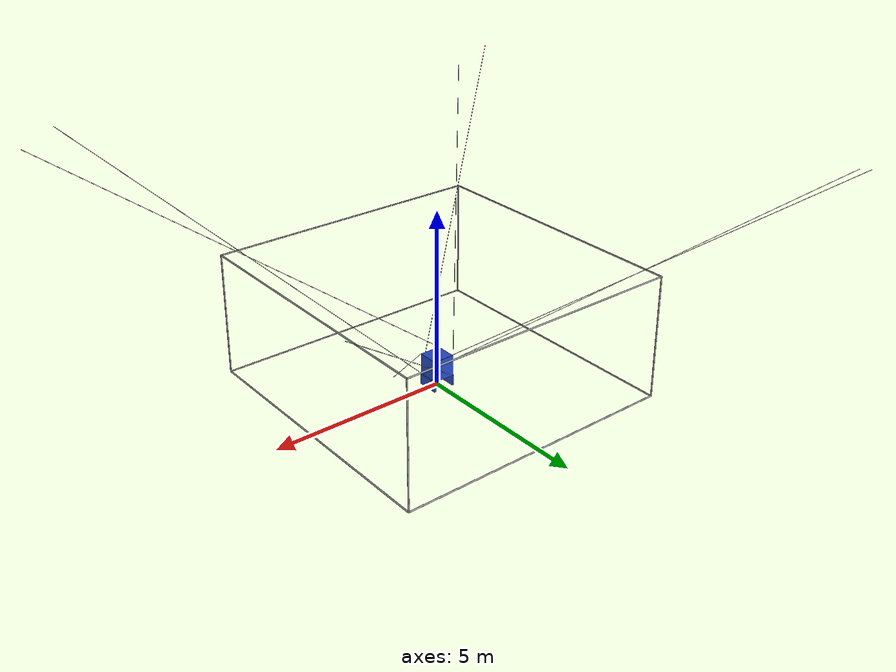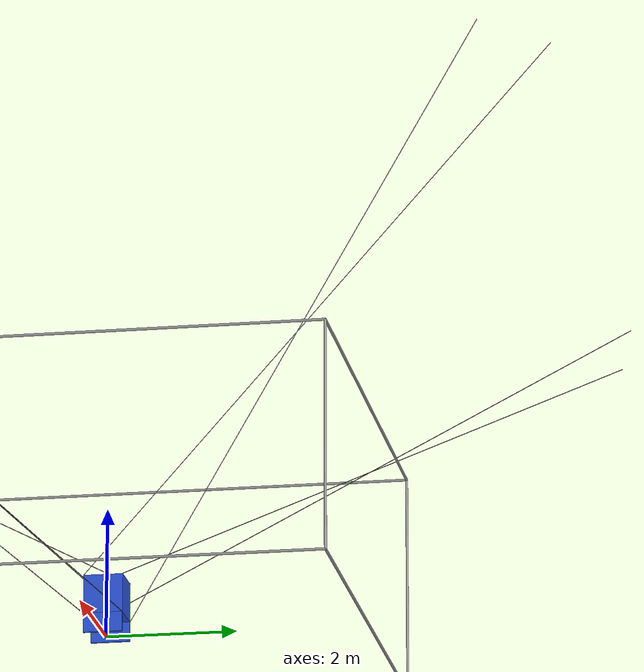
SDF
<?xml version="1.0"?>
<sdf version="1.4">
  <model name="caroca">
    <!--Definition of the robot frame-->
    <link name="frame">
      <pose>0 0 0 0 0 0</pose>
      <inertial>
        <inertia>
          <ixx>100000</ixx>
          <iyy>100000</iyy>
          <izz>100000</izz>
          <ixy>0</ixy>
          <ixz>0</ixz>
          <iyz>0</iyz>
        </inertia>
        <mass>100000</mass>
      </inertial>
      <visual name="visual1">
        <geometry>
          <cylinder>
            <radius>0.02</radius>
            <length>3.48</length>
          </cylinder>
        </geometry>
        <pose>-4.000000 -4.000000 1.760000 0.000000 0.000000 0.000000</pose>
        <material>
          <script>
            <uri>file://media/materials/scripts/kitchen.material</uri>
            <name>Gazebo/Grey</name>
          </script>
        </material>
      </visual>
      <collision name="collision1">
        <geometry>
          <cylinder>
            <radius>0.02</radius>
          </cylinder>
        </geometry>
        <pose>-4.000000 -4.000000 1.760000 0.000000 0.000000 0.000000</pose>
      </collision>
      <visual name="visual2">
        <geometry>
          <cylinder>
            <radius>0.02</radius>
            <length>8.0</length>
          </cylinder>
        </geometry>
        <pose>-4.000000 0.000000 0.020000 1.570796 0.000000 0.000000</pose>
        <material>
          <script>
            <uri>file://media/materials/scripts/kitchen.material</uri>
            <name>Gazebo/Grey</name>
          </script>
        </material>
      </visual>
      <collision name="collision2">
        <geometry>
          <cylinder>
            <radius>0.02</radius>
          </cylinder>
        </geometry>
        <pose>-4.000000 0.000000 0.020000 1.570796 0.000000 0.000000</pose>
      </collision>
      <visual name="visual3">
        <geometry>
          <cylinder>
            <radius>0.02</radius>
            <length>8.0</length>
          </cylinder>
        </geometry>
        <pose>0.000000 -4.000000 0.020000 0.000000 1.570796 0.000000</pose>
        <material>
          <script>
            <uri>file://media/materials/scripts/kitchen.material</uri>
            <name>Gazebo/Grey</name>
          </script>
        </material>
      </visual>
      <collision name="collision3">
        <geometry>
          <cylinder>
            <radius>0.02</radius>
          </cylinder>
        </geometry>
        <pose>0.000000 -4.000000 0.020000 0.000000 1.570796 0.000000</pose>
      </collision>
      <visual name="visual4">
        <geometry>
          <cylinder>
            <radius>0.02</radius>
            <length>8.0</length>
          </cylinder>
        </geometry>
        <pose>-4.000000 0.000000 3.500000 1.570796 0.000000 0.000000</pose>
        <material>
          <script>
            <uri>file://media/materials/scripts/kitchen.material</uri>
            <name>Gazebo/Grey</name>
          </script>
        </material>
      </visual>
      <collision name="collision4">
        <geometry>
          <cylinder>
            <radius>0.02</radius>
          </cylinder>
        </geometry>
        <pose>-4.000000 0.000000 3.500000 1.570796 0.000000 0.000000</pose>
      </collision>
      <visual name="visual5">
        <geometry>
          <cylinder>
            <radius>0.02</radius>
            <length>8.0</length>
          </cylinder>
        </geometry>
        <pose>0.000000 -4.000000 3.500000 0.000000 1.570796 0.000000</pose>
        <material>
          <script>
            <uri>file://media/materials/scripts/kitchen.material</uri>
            <name>Gazebo/Grey</name>
          </script>
        </material>
      </visual>
      <collision name="collision5">
        <geometry>
          <cylinder>
            <radius>0.02</radius>
          </cylinder>
        </geometry>
        <pose>0.000000 -4.000000 3.500000 0.000000 1.570796 0.000000</pose>
      </collision>
      <visual name="visual6">
        <geometry>
          <cylinder>
            <radius>0.02</radius>
            <length>3.48</length>
          </cylinder>
        </geometry>
        <pose>-4.000000 4.000000 1.760000 0.000000 0.000000 0.000000</pose>
        <material>
          <script>
            <uri>file://media/materials/scripts/kitchen.material</uri>
            <name>Gazebo/Grey</name>
          </script>
        </material>
      </visual>
      <collision name="collision6">
        <geometry>
          <cylinder>
            <radius>0.02</radius>
          </cylinder>
        </geometry>
        <pose>-4.000000 4.000000 1.760000 0.000000 0.000000 0.000000</pose>
      </collision>
      <visual name="visual7">
        <geometry>
          <cylinder>
            <radius>0.02</radius>
            <length>8.0</length>
          </cylinder>
        </geometry>
        <pose>0.000000 4.000000 0.020000 0.000000 1.570796 0.000000</pose>
        <material>
          <script>
            <uri>file://media/materials/scripts/kitchen.material</uri>
            <name>Gazebo/Grey</name>
          </script>
        </material>
      </visual>
      <collision name="collision7">
        <geometry>
          <cylinder>
            <radius>0.02</radius>
          </cylinder>
        </geometry>
        <pose>0.000000 4.000000 0.020000 0.000000 1.570796 0.000000</pose>
      </collision>
      <visual name="visual8">
        <geometry>
          <cylinder>
            <radius>0.02</radius>
            <length>8.0</length>
          </cylinder>
        </geometry>
        <pose>0.000000 4.000000 3.500000 0.000000 1.570796 0.000000</pose>
        <material>
          <script>
            <uri>file://media/materials/scripts/kitchen.material</uri>
            <name>Gazebo/Grey</name>
          </script>
        </material>
      </visual>
      <collision name="collision8">
        <geometry>
          <cylinder>
            <radius>0.02</radius>
          </cylinder>
        </geometry>
        <pose>0.000000 4.000000 3.500000 0.000000 1.570796 0.000000</pose>
      </collision>
      <visual name="visual9">
        <geometry>
          <cylinder>
            <radius>0.02</radius>
            <length>3.48</length>
          </cylinder>
        </geometry>
        <pose>4.000000 -4.000000 1.760000 0.000000 0.000000 0.000000</pose>
        <material>
          <script>
            <uri>file://media/materials/scripts/kitchen.material</uri>
            <name>Gazebo/Grey</name>
          </script>
        </material>
      </visual>
      <collision name="collision9">
        <geometry>
          <cylinder>
            <radius>0.02</radius>
          </cylinder>
        </geometry>
        <pose>4.000000 -4.000000 1.760000 0.000000 0.000000 0.000000</pose>
      </collision>
      <visual name="visual10">
        <geometry>
          <cylinder>
            <radius>0.02</radius>
            <length>8.0</length>
          </cylinder>
        </geometry>
        <pose>4.000000 0.000000 0.020000 1.570796 0.000000 0.000000</pose>
        <material>
          <script>
            <uri>file://media/materials/scripts/kitchen.material</uri>
            <name>Gazebo/Grey</name>
          </script>
        </material>
      </visual>
      <collision name="collision10">
        <geometry>
          <cylinder>
            <radius>0.02</radius>
          </cylinder>
        </geometry>
        <pose>4.000000 0.000000 0.020000 1.570796 0.000000 0.000000</pose>
      </collision>
      <visual name="visual11">
        <geometry>
          <cylinder>
            <radius>0.02</radius>
            <length>8.0</length>
          </cylinder>
        </geometry>
        <pose>4.000000 0.000000 3.500000 1.570796 0.000000 0.000000</pose>
        <material>
          <script>
            <uri>file://media/materials/scripts/kitchen.material</uri>
            <name>Gazebo/Grey</name>
          </script>
        </material>
      </visual>
      <collision name="collision11">
        <geometry>
          <cylinder>
            <radius>0.02</radius>
          </cylinder>
        </geometry>
        <pose>4.000000 0.000000 3.500000 1.570796 0.000000 0.000000</pose>
      </collision>
      <visual name="visual12">
        <geometry>
          <cylinder>
            <radius>0.02</radius>
            <length>3.48</length>
          </cylinder>
        </geometry>
        <pose>4.000000 4.000000 1.760000 0.000000 0.000000 0.000000</pose>
        <material>
          <script>
            <uri>file://media/materials/scripts/kitchen.material</uri>
            <name>Gazebo/Grey</name>
          </script>
        </material>
      </visual>
      <collision name="collision12">
        <geometry>
          <cylinder>
            <radius>0.02</radius>
          </cylinder>
        </geometry>
        <pose>4.000000 4.000000 1.760000 0.000000 0.000000 0.000000</pose>
      </collision>
    </link>
    <!--Definition of the robot cables-->
    <!--Definition of the robot platform-->
    <link name="platform">
      <pose>0.000000 0.000000 0.600000 0.000000 0.000000 0.000000</pose>
      <visual name="visualpf">
        <geometry>
          <box>
            <size>0.600000 0.600000 0.600000</size>
          </box>
        </geometry>
        <material>
          <script>
            <uri>file://media/materials/scripts/kitchen.material</uri>
            <name>Gazebo/Blue</name>
          </script>
        </material>
      </visual>
      <collision name="collisionpf">
        <geometry>
          <box>
            <size>0.600000 0.600000 0.600000</size>
          </box>
        </geometry>
      </collision>
      <inertial>
        <inertia>
          <ixx>6.5</ixx>
          <iyy>20.0</iyy>
          <izz>22.5</izz>
          <ixy>0.0</ixy>
          <ixz>0.0</ixz>
          <iyz>0.0</iyz>
        </inertia>
        <mass>150</mass>
      </inertial>
    </link>

    <link name="right_grip">
      <pose>0.3 0 0.15 0 0 0</pose>
      <visual name="visual_right_grip">
        <geometry>
          <box>
            <size>0.05 0.6 0.3</size>
          </box>
        </geometry>
        <material>
          <script>
            <uri>file://media/materials/scripts/kitchen.material</uri>
            <name>Gazebo/Blue</name>
          </script>
        </material>
      </visual>
      <collision name="collision_right_grip">
        <geometry>
          <box>
            <size>0.05 0.6 0.3</size>
          </box>
        </geometry>
        <surface>
          <friction>
            <ode>
              <mu>1</mu>
              <mu2>1</mu2>
              <fdir1>0 0 0</fdir1>
              <slip1>0</slip1>
              <slip2>0</slip2>
            </ode>
            <torsional>
              <coefficient>1</coefficient>
              <patch_radius>0</patch_radius>
              <surface_radius>0</surface_radius>
              <use_patch_radius>1</use_patch_radius>
              <ode>
                <slip>0</slip>
              </ode>
            </torsional>
          </friction>
        </surface>
      </collision>
      <inertial>
        <inertia>
          <ixx>0.166667</ixx>
          <iyy>0</iyy>
          <izz>0</izz>
          <ixy>0.166667</ixy>
          <ixz>0</ixz>
          <iyz>0.166667</iyz>
        </inertia>
        <mass>1</mass>
      </inertial>
    </link>

    <link name="left_grip">
      <pose>-0.3 0 0.15 0 0 0</pose>
      <visual name="visual_left_grip">
        <geometry>
          <box>
            <size>0.05 0.6 0.3</size>
          </box>
        </geometry>
        <material>
          <script>
            <uri>file://media/materials/scripts/kitchen.material</uri>
            <name>Gazebo/Blue</name>
          </script>
        </material>
      </visual>
      <collision name="collision_left_grip">
        <geometry>
          <box>
            <size>0.05 0.6 0.3</size>
          </box>
        </geometry>
        <surface>
          <friction>
            <ode>
              <mu>1</mu>
              <mu2>1</mu2>
              <fdir1>0 0 0</fdir1>
              <slip1>0</slip1>
              <slip2>0</slip2>
            </ode>
            <torsional>
              <coefficient>1</coefficient>
              <patch_radius>0</patch_radius>
              <surface_radius>0</surface_radius>
              <use_patch_radius>1</use_patch_radius>
              <ode>
                <slip>0</slip>
              </ode>
            </torsional>
          </friction>
          </surface>
      </collision>
      <inertial>
        <inertia>
          <ixx>0.166667</ixx>
          <iyy>0</iyy>
          <izz>0</izz>
          <ixy>0.166667</ixy>
          <ixz>0</ixz>
          <iyz>0.166667</iyz>
        </inertia>
        <mass>1</mass>
      </inertial>
    </link>

     <joint name="grip_left_slide" type="prismatic">
      <pose>0 0 0 0 0 0</pose>
      <parent>platform</parent>
      <child>left_grip</child>
      <axis>
        <xyz>1 0 0</xyz>
        <limit>
          <lower>0</lower>
          <upper>0.2</upper>
          <effort>1000</effort>
          <velocity>10</velocity>
        </limit>
        <dynamics>
          <spring_reference>0</spring_reference>
          <spring_stiffness>0</spring_stiffness>
          <damping>0</damping>
        </dynamics>
      </axis>
    </joint>

    <joint name="grip_right_slide" type="prismatic">
      <pose>0 0 0 0 0 0</pose>
      <parent>platform</parent>
      <child>right_grip</child>
      <axis>
        <xyz>-1 0 0</xyz>
        <limit>
           <lower>0</lower>
          <upper>0.2</upper>
          <effort>1000</effort>
          <velocity>10</velocity>
        </limit>
        <dynamics>
          <spring_reference>0</spring_reference>
          <spring_stiffness>0</spring_stiffness>
          <damping>0</damping>
        </dynamics>
      </axis>
    </joint>

    <link name="cable0">
      <pose>-3.505850 -3.504926 3.504926 -2.356194 0.698478 -1.442379</pose>
      <visual name="visual">
        <geometry>
          <cylinder>
            <radius>0.005</radius>
            <length>11.8368238983</length>
          </cylinder>
        </geometry>
        <material>
          <script>
            <uri>file://media/materials/scripts/kitchen.material</uri>
            <name>Gazebo/Black</name>
          </script>
        </material>
      </visual>
      <inertial>
        <inertia>
          <ixx>0.001</ixx>
          <iyy>0.001</iyy>
          <izz>0.001</izz>
          <ixy>0</ixy>
          <ixz>0</ixz>
          <iyz>0</iyz>
        </inertia>
        <mass>0.001</mass>
      </inertial>
    </link>
    <link name="virt_X0">
      <inertial>
        <inertia>
          <ixx>0.001</ixx>
          <iyy>0.001</iyy>
          <izz>0.001</izz>
          <ixy>0</ixy>
          <ixz>0</ixz>
          <iyz>0</iyz>
        </inertia>
        <mass>0.001</mass>
      </inertial>
      <pose>-3.500000 -3.500000 3.500000 -2.356194 0.698478 -1.442379</pose>
    </link>
    <joint name="rev_X0" type="revolute">
      <pose>0 0 0 -2.356194 0.698478 -1.442379</pose>
      <parent>frame</parent>
      <child>virt_X0</child>
      <axis>
        <xyz>0.098075 -0.759516 -0.643053</xyz>
        <limit>
          <effort>1000</effort>
          <velocity>10</velocity>
        </limit>
        <dynamics>
          <damping>0.01</damping>
        </dynamics>
      </axis>
    </joint>
    <link name="virt_Y0">
      <inertial>
        <inertia>
          <ixx>0.001</ixx>
          <iyy>0.001</iyy>
          <izz>0.001</izz>
          <ixy>0</ixy>
          <ixz>0</ixz>
          <iyz>0</iyz>
        </inertia>
        <mass>0.001</mass>
      </inertial>
      <pose>-3.500000 -3.500000 3.500000 -2.356194 0.698478 -1.442379</pose>
    </link>
    <joint name="rev_Y0" type="revolute">
      <pose>0 0 0 -2.356194 0.698478 -1.442379</pose>
      <parent>virt_X0</parent>
      <child>virt_Y0</child>
      <axis>
        <xyz>-0.759516 0.360407 -0.541518</xyz>
        <limit>
          <effort>1000</effort>
          <velocity>10</velocity>
        </limit>
        <dynamics>
          <damping>0.01</damping>
        </dynamics>
      </axis>
    </joint>
    <joint name="cable0" type="prismatic">
      <pose>0 0 0.009111 -2.356194 0.698478 -1.442379</pose>
      <parent>virt_Y0</parent>
      <child>cable0</child>
      <axis>
        <xyz>-0.643053 -0.541518 0.541518</xyz>
        <limit>
          <lower>-5.91841194916</lower>
          <upper>5.91841194916</upper>
          <effort>10000</effort>
          <velocity>10</velocity>
        </limit>
        <dynamics>
          <damping>1</damping>
        </dynamics>
      </axis>
    </joint>
    <link name="virt_Xpf0">
      <inertial>
        <inertia>
          <ixx>0.001</ixx>
          <iyy>0.001</iyy>
          <izz>0.001</izz>
          <ixy>0</ixy>
          <ixz>0</ixz>
          <iyz>0</iyz>
        </inertia>
        <mass>0.001</mass>
      </inertial>
      <pose>0.300000 -0.300000 0.300000 -2.356194 0.698478 -1.442379</pose>
    </link>
    <joint name="rev_Xpf0" type="revolute">
      <pose>0 0 0 -2.356194 0.698478 -1.442379</pose>
      <parent>platform</parent>
      <child>virt_Xpf0</child>
      <axis>
        <xyz>1 0 0</xyz>
        <limit>
          <effort>1000</effort>
          <velocity>10</velocity>
        </limit>
        <dynamics>
          <damping>0.01</damping>
        </dynamics>
      </axis>
    </joint>
    <link name="virt_Ypf0">
      <inertial>
        <inertia>
          <ixx>0.001</ixx>
          <iyy>0.001</iyy>
          <izz>0.001</izz>
          <ixy>0</ixy>
          <ixz>0</ixz>
          <iyz>0</iyz>
        </inertia>
        <mass>0.001</mass>
      </inertial>
      <pose>0.300000 -0.300000 0.300000 -2.356194 0.698478 -1.442379</pose>
    </link>
    <joint name="rev_Ypf0" type="revolute">
      <pose>0 0 0 -2.356194 0.698478 -1.442379</pose>
      <parent>virt_Xpf0</parent>
      <child>virt_Ypf0</child>
      <axis>
        <xyz>0 1 0</xyz>
        <limit>
          <effort>1000</effort>
          <velocity>10</velocity>
        </limit>
        <dynamics>
          <damping>0.01</damping>
        </dynamics>
      </axis>
    </joint>
    <joint name="rev_Zpf0" type="revolute">
      <pose>0 0 0 -2.356194 0.698478 -1.442379</pose>
      <child>virt_Ypf0</child>
      <parent>cable0</parent>
      <axis>
        <xyz>0 0 1</xyz>
        <limit>
          <effort>1000</effort>
          <velocity>10</velocity>
        </limit>
        <dynamics>
          <damping>0.01</damping>
        </dynamics>
      </axis>
    </joint>
    <link name="cable1">
      <pose>-3.677644 -3.710952 3.644336 -2.170847 0.607359 -1.072165</pose>
      <visual name="visual">
        <geometry>
          <cylinder>
            <radius>0.005</radius>
            <length>11.8368238983</length>
          </cylinder>
        </geometry>
        <material>
          <script>
            <uri>file://media/materials/scripts/kitchen.material</uri>
            <name>Gazebo/Black</name>
          </script>
        </material>
      </visual>
      <inertial>
        <inertia>
          <ixx>0.001</ixx>
          <iyy>0.001</iyy>
          <izz>0.001</izz>
          <ixy>0</ixy>
          <ixz>0</ixz>
          <iyz>0</iyz>
        </inertia>
        <mass>0.001</mass>
      </inertial>
    </link>
    <link name="virt_X1">
      <inertial>
        <inertia>
          <ixx>0.001</ixx>
          <iyy>0.001</iyy>
          <izz>0.001</izz>
          <ixy>0</ixy>
          <ixz>0</ixz>
          <iyz>0</iyz>
        </inertia>
        <mass>0.001</mass>
      </inertial>
      <pose>-3.500000 -3.500000 3.500000 -2.170847 0.607359 -1.072165</pose>
    </link>
    <joint name="rev_X1" type="revolute">
      <pose>0 0 0 -2.170847 0.607359 -1.072165</pose>
      <parent>frame</parent>
      <child>virt_X1</child>
      <axis>
        <xyz>0.392697 -0.721172 -0.570701</xyz>
        <limit>
          <effort>1000</effort>
          <velocity>10</velocity>
        </limit>
        <dynamics>
          <damping>0.01</damping>
        </dynamics>
      </axis>
    </joint>
    <link name="virt_Y1">
      <inertial>
        <inertia>
          <ixx>0.001</ixx>
          <iyy>0.001</iyy>
          <izz>0.001</izz>
          <ixy>0</ixy>
          <ixz>0</ixz>
          <iyz>0</iyz>
        </inertia>
        <mass>0.001</mass>
      </inertial>
      <pose>-3.500000 -3.500000 3.500000 -2.170847 0.607359 -1.072165</pose>
    </link>
    <joint name="rev_Y1" type="revolute">
      <pose>0 0 0 -2.170847 0.607359 -1.072165</pose>
      <parent>virt_X1</parent>
      <child>virt_Y1</child>
      <axis>
        <xyz>-0.721172 0.143608 -0.677708</xyz>
        <limit>
          <effort>1000</effort>
          <velocity>10</velocity>
        </limit>
        <dynamics>
          <damping>0.01</damping>
        </dynamics>
      </axis>
    </joint>
    <joint name="cable1" type="prismatic">
      <pose>0 0 0.328554 -2.170847 0.607359 -1.072165</pose>
      <parent>virt_Y1</parent>
      <child>cable1</child>
      <axis>
        <xyz>-0.570701 -0.677708 0.463695</xyz>
        <limit>
          <lower>-5.91841194916</lower>
          <upper>5.91841194916</upper>
          <effort>10000</effort>
          <velocity>10</velocity>
        </limit>
        <dynamics>
          <damping>1</damping>
        </dynamics>
      </axis>
    </joint>
    <link name="virt_Xpf1">
      <inertial>
        <inertia>
          <ixx>0.001</ixx>
          <iyy>0.001</iyy>
          <izz>0.001</izz>
          <ixy>0</ixy>
          <ixz>0</ixz>
          <iyz>0</iyz>
        </inertia>
        <mass>0.001</mass>
      </inertial>
      <pose>-0.300000 0.300000 0.900000 -2.170847 0.607359 -1.072165</pose>
    </link>
    <joint name="rev_Xpf1" type="revolute">
      <pose>0 0 0 -2.170847 0.607359 -1.072165</pose>
      <parent>platform</parent>
      <child>virt_Xpf1</child>
      <axis>
        <xyz>1 0 0</xyz>
        <limit>
          <effort>1000</effort>
          <velocity>10</velocity>
        </limit>
        <dynamics>
          <damping>0.01</damping>
        </dynamics>
      </axis>
    </joint>
    <link name="virt_Ypf1">
      <inertial>
        <inertia>
          <ixx>0.001</ixx>
          <iyy>0.001</iyy>
          <izz>0.001</izz>
          <ixy>0</ixy>
          <ixz>0</ixz>
          <iyz>0</iyz>
        </inertia>
        <mass>0.001</mass>
      </inertial>
      <pose>-0.300000 0.300000 0.900000 -2.170847 0.607359 -1.072165</pose>
    </link>
    <joint name="rev_Ypf1" type="revolute">
      <pose>0 0 0 -2.170847 0.607359 -1.072165</pose>
      <parent>virt_Xpf1</parent>
      <child>virt_Ypf1</child>
      <axis>
        <xyz>0 1 0</xyz>
        <limit>
          <effort>1000</effort>
          <velocity>10</velocity>
        </limit>
        <dynamics>
          <damping>0.01</damping>
        </dynamics>
      </axis>
    </joint>
    <joint name="rev_Zpf1" type="revolute">
      <pose>0 0 0 -2.170847 0.607359 -1.072165</pose>
      <child>virt_Ypf1</child>
      <parent>cable1</parent>
      <axis>
        <xyz>0 0 1</xyz>
        <limit>
          <effort>1000</effort>
          <velocity>10</velocity>
        </limit>
        <dynamics>
          <damping>0.01</damping>
        </dynamics>
      </axis>
    </joint>
    <link name="cable2">
      <pose>3.710952 -3.677644 3.644336 -2.253113 -0.744641 1.374236</pose>
      <visual name="visual">
        <geometry>
          <cylinder>
            <radius>0.005</radius>
            <length>11.8368238983</length>
          </cylinder>
        </geometry>
        <material>
          <script>
            <uri>file://media/materials/scripts/kitchen.material</uri>
            <name>Gazebo/Black</name>
          </script>
        </material>
      </visual>
      <inertial>
        <inertia>
          <ixx>0.001</ixx>
          <iyy>0.001</iyy>
          <izz>0.001</izz>
          <ixy>0</ixy>
          <ixz>0</ixz>
          <iyz>0</iyz>
        </inertia>
        <mass>0.001</mass>
      </inertial>
    </link>
    <link name="virt_X2">
      <inertial>
        <inertia>
          <ixx>0.001</ixx>
          <iyy>0.001</iyy>
          <izz>0.001</izz>
          <ixy>0</ixy>
          <ixz>0</ixz>
          <iyz>0</iyz>
        </inertia>
        <mass>0.001</mass>
      </inertial>
      <pose>3.500000 -3.500000 3.500000 -2.253113 -0.744641 1.374236</pose>
    </link>
    <joint name="rev_X2" type="revolute">
      <pose>0 0 0 -2.253113 -0.744641 1.374236</pose>
      <parent>frame</parent>
      <child>virt_X2</child>
      <axis>
        <xyz>0.143608 0.721172 0.677708</xyz>
        <limit>
          <effort>1000</effort>
          <velocity>10</velocity>
        </limit>
        <dynamics>
          <damping>0.01</damping>
        </dynamics>
      </axis>
    </joint>
    <link name="virt_Y2">
      <inertial>
        <inertia>
          <ixx>0.001</ixx>
          <iyy>0.001</iyy>
          <izz>0.001</izz>
          <ixy>0</ixy>
          <ixz>0</ixz>
          <iyz>0</iyz>
        </inertia>
        <mass>0.001</mass>
      </inertial>
      <pose>3.500000 -3.500000 3.500000 -2.253113 -0.744641 1.374236</pose>
    </link>
    <joint name="rev_Y2" type="revolute">
      <pose>0 0 0 -2.253113 -0.744641 1.374236</pose>
      <parent>virt_X2</parent>
      <child>virt_Y2</child>
      <axis>
        <xyz>0.721172 0.392697 -0.570701</xyz>
        <limit>
          <effort>1000</effort>
          <velocity>10</velocity>
        </limit>
        <dynamics>
          <damping>0.01</damping>
        </dynamics>
      </axis>
    </joint>
    <joint name="cable2" type="prismatic">
      <pose>0 0 0.328554 -2.253113 -0.744641 1.374236</pose>
      <parent>virt_Y2</parent>
      <child>cable2</child>
      <axis>
        <xyz>0.677708 -0.570701 0.463695</xyz>
        <limit>
          <lower>-5.91841194916</lower>
          <upper>5.91841194916</upper>
          <effort>10000</effort>
          <velocity>10</velocity>
        </limit>
        <dynamics>
          <damping>1</damping>
        </dynamics>
      </axis>
    </joint>
    <link name="virt_Xpf2">
      <inertial>
        <inertia>
          <ixx>0.001</ixx>
          <iyy>0.001</iyy>
          <izz>0.001</izz>
          <ixy>0</ixy>
          <ixz>0</ixz>
          <iyz>0</iyz>
        </inertia>
        <mass>0.001</mass>
      </inertial>
      <pose>-0.300000 -0.300000 0.900000 -2.253113 -0.744641 1.374236</pose>
    </link>
    <joint name="rev_Xpf2" type="revolute">
      <pose>0 0 0 -2.253113 -0.744641 1.374236</pose>
      <parent>platform</parent>
      <child>virt_Xpf2</child>
      <axis>
        <xyz>1 0 0</xyz>
        <limit>
          <effort>1000</effort>
          <velocity>10</velocity>
        </limit>
        <dynamics>
          <damping>0.01</damping>
        </dynamics>
      </axis>
    </joint>
    <link name="virt_Ypf2">
      <inertial>
        <inertia>
          <ixx>0.001</ixx>
          <iyy>0.001</iyy>
          <izz>0.001</izz>
          <ixy>0</ixy>
          <ixz>0</ixz>
          <iyz>0</iyz>
        </inertia>
        <mass>0.001</mass>
      </inertial>
      <pose>-0.300000 -0.300000 0.900000 -2.253113 -0.744641 1.374236</pose>
    </link>
    <joint name="rev_Ypf2" type="revolute">
      <pose>0 0 0 -2.253113 -0.744641 1.374236</pose>
      <parent>virt_Xpf2</parent>
      <child>virt_Ypf2</child>
      <axis>
        <xyz>0 1 0</xyz>
        <limit>
          <effort>1000</effort>
          <velocity>10</velocity>
        </limit>
        <dynamics>
          <damping>0.01</damping>
        </dynamics>
      </axis>
    </joint>
    <joint name="rev_Zpf2" type="revolute">
      <pose>0 0 0 -2.253113 -0.744641 1.374236</pose>
      <child>virt_Ypf2</child>
      <parent>cable2</parent>
      <axis>
        <xyz>0 0 1</xyz>
        <limit>
          <effort>1000</effort>
          <velocity>10</velocity>
        </limit>
        <dynamics>
          <damping>0.01</damping>
        </dynamics>
      </axis>
    </joint>
    <link name="cable3">
      <pose>3.504926 -3.505850 3.504926 -2.270689 -0.572242 1.127738</pose>
      <visual name="visual">
        <geometry>
          <cylinder>
            <radius>0.005</radius>
            <length>11.8368238983</length>
          </cylinder>
        </geometry>
        <material>
          <script>
            <uri>file://media/materials/scripts/kitchen.material</uri>
            <name>Gazebo/Black</name>
          </script>
        </material>
      </visual>
      <inertial>
        <inertia>
          <ixx>0.001</ixx>
          <iyy>0.001</iyy>
          <izz>0.001</izz>
          <ixy>0</ixy>
          <ixz>0</ixz>
          <iyz>0</iyz>
        </inertia>
        <mass>0.001</mass>
      </inertial>
    </link>
    <link name="virt_X3">
      <inertial>
        <inertia>
          <ixx>0.001</ixx>
          <iyy>0.001</iyy>
          <izz>0.001</izz>
          <ixy>0</ixy>
          <ixz>0</ixz>
          <iyz>0</iyz>
        </inertia>
        <mass>0.001</mass>
      </inertial>
      <pose>3.500000 -3.500000 3.500000 -2.270689 -0.572242 1.127738</pose>
    </link>
    <joint name="rev_X3" type="revolute">
      <pose>0 0 0 -2.270689 -0.572242 1.127738</pose>
      <parent>frame</parent>
      <child>virt_X3</child>
      <axis>
        <xyz>0.360407 0.759516 0.541518</xyz>
        <limit>
          <effort>1000</effort>
          <velocity>10</velocity>
        </limit>
        <dynamics>
          <damping>0.01</damping>
        </dynamics>
      </axis>
    </joint>
    <link name="virt_Y3">
      <inertial>
        <inertia>
          <ixx>0.001</ixx>
          <iyy>0.001</iyy>
          <izz>0.001</izz>
          <ixy>0</ixy>
          <ixz>0</ixz>
          <iyz>0</iyz>
        </inertia>
        <mass>0.001</mass>
      </inertial>
      <pose>3.500000 -3.500000 3.500000 -2.270689 -0.572242 1.127738</pose>
    </link>
    <joint name="rev_Y3" type="revolute">
      <pose>0 0 0 -2.270689 -0.572242 1.127738</pose>
      <parent>virt_X3</parent>
      <child>virt_Y3</child>
      <axis>
        <xyz>0.759516 0.098075 -0.643053</xyz>
        <limit>
          <effort>1000</effort>
          <velocity>10</velocity>
        </limit>
        <dynamics>
          <damping>0.01</damping>
        </dynamics>
      </axis>
    </joint>
    <joint name="cable3" type="prismatic">
      <pose>0 0 0.009111 -2.270689 -0.572242 1.127738</pose>
      <parent>virt_Y3</parent>
      <child>cable3</child>
      <axis>
        <xyz>0.541518 -0.643053 0.541518</xyz>
        <limit>
          <lower>-5.91841194916</lower>
          <upper>5.91841194916</upper>
          <effort>10000</effort>
          <velocity>10</velocity>
        </limit>
        <dynamics>
          <damping>1</damping>
        </dynamics>
      </axis>
    </joint>
    <link name="virt_Xpf3">
      <inertial>
        <inertia>
          <ixx>0.001</ixx>
          <iyy>0.001</iyy>
          <izz>0.001</izz>
          <ixy>0</ixy>
          <ixz>0</ixz>
          <iyz>0</iyz>
        </inertia>
        <mass>0.001</mass>
      </inertial>
      <pose>0.300000 0.300000 0.300000 -2.270689 -0.572242 1.127738</pose>
    </link>
    <joint name="rev_Xpf3" type="revolute">
      <pose>0 0 0 -2.270689 -0.572242 1.127738</pose>
      <parent>platform</parent>
      <child>virt_Xpf3</child>
      <axis>
        <xyz>1 0 0</xyz>
        <limit>
          <effort>1000</effort>
          <velocity>10</velocity>
        </limit>
        <dynamics>
          <damping>0.01</damping>
        </dynamics>
      </axis>
    </joint>
    <link name="virt_Ypf3">
      <inertial>
        <inertia>
          <ixx>0.001</ixx>
          <iyy>0.001</iyy>
          <izz>0.001</izz>
          <ixy>0</ixy>
          <ixz>0</ixz>
          <iyz>0</iyz>
        </inertia>
        <mass>0.001</mass>
      </inertial>
      <pose>0.300000 0.300000 0.300000 -2.270689 -0.572242 1.127738</pose>
    </link>
    <joint name="rev_Ypf3" type="revolute">
      <pose>0 0 0 -2.270689 -0.572242 1.127738</pose>
      <parent>virt_Xpf3</parent>
      <child>virt_Ypf3</child>
      <axis>
        <xyz>0 1 0</xyz>
        <limit>
          <effort>1000</effort>
          <velocity>10</velocity>
        </limit>
        <dynamics>
          <damping>0.01</damping>
        </dynamics>
      </axis>
    </joint>
    <joint name="rev_Zpf3" type="revolute">
      <pose>0 0 0 -2.270689 -0.572242 1.127738</pose>
      <child>virt_Ypf3</child>
      <parent>cable3</parent>
      <axis>
        <xyz>0 0 1</xyz>
        <limit>
          <effort>1000</effort>
          <velocity>10</velocity>
        </limit>
        <dynamics>
          <damping>0.01</damping>
        </dynamics>
      </axis>
    </joint>
    <link name="cable4">
      <pose>-3.504926 3.505850 3.504926 2.270689 0.572242 1.127738</pose>
      <visual name="visual">
        <geometry>
          <cylinder>
            <radius>0.005</radius>
            <length>11.8368238983</length>
          </cylinder>
        </geometry>
        <material>
          <script>
            <uri>file://media/materials/scripts/kitchen.material</uri>
            <name>Gazebo/Black</name>
          </script>
        </material>
      </visual>
      <inertial>
        <inertia>
          <ixx>0.001</ixx>
          <iyy>0.001</iyy>
          <izz>0.001</izz>
          <ixy>0</ixy>
          <ixz>0</ixz>
          <iyz>0</iyz>
        </inertia>
        <mass>0.001</mass>
      </inertial>
    </link>
    <link name="virt_X4">
      <inertial>
        <inertia>
          <ixx>0.001</ixx>
          <iyy>0.001</iyy>
          <izz>0.001</izz>
          <ixy>0</ixy>
          <ixz>0</ixz>
          <iyz>0</iyz>
        </inertia>
        <mass>0.001</mass>
      </inertial>
      <pose>-3.500000 3.500000 3.500000 2.270689 0.572242 1.127738</pose>
    </link>
    <joint name="rev_X4" type="revolute">
      <pose>0 0 0 2.270689 0.572242 1.127738</pose>
      <parent>frame</parent>
      <child>virt_X4</child>
      <axis>
        <xyz>0.360407 0.759516 -0.541518</xyz>
        <limit>
          <effort>1000</effort>
          <velocity>10</velocity>
        </limit>
        <dynamics>
          <damping>0.01</damping>
        </dynamics>
      </axis>
    </joint>
    <link name="virt_Y4">
      <inertial>
        <inertia>
          <ixx>0.001</ixx>
          <iyy>0.001</iyy>
          <izz>0.001</izz>
          <ixy>0</ixy>
          <ixz>0</ixz>
          <iyz>0</iyz>
        </inertia>
        <mass>0.001</mass>
      </inertial>
      <pose>-3.500000 3.500000 3.500000 2.270689 0.572242 1.127738</pose>
    </link>
    <joint name="rev_Y4" type="revolute">
      <pose>0 0 0 2.270689 0.572242 1.127738</pose>
      <parent>virt_X4</parent>
      <child>virt_Y4</child>
      <axis>
        <xyz>0.759516 0.098075 0.643053</xyz>
        <limit>
          <effort>1000</effort>
          <velocity>10</velocity>
        </limit>
        <dynamics>
          <damping>0.01</damping>
        </dynamics>
      </axis>
    </joint>
    <joint name="cable4" type="prismatic">
      <pose>0 0 0.009111 2.270689 0.572242 1.127738</pose>
      <parent>virt_Y4</parent>
      <child>cable4</child>
      <axis>
        <xyz>-0.541518 0.643053 0.541518</xyz>
        <limit>
          <lower>-5.91841194916</lower>
          <upper>5.91841194916</upper>
          <effort>10000</effort>
          <velocity>10</velocity>
        </limit>
        <dynamics>
          <damping>1</damping>
        </dynamics>
      </axis>
    </joint>
    <link name="virt_Xpf4">
      <inertial>
        <inertia>
          <ixx>0.001</ixx>
          <iyy>0.001</iyy>
          <izz>0.001</izz>
          <ixy>0</ixy>
          <ixz>0</ixz>
          <iyz>0</iyz>
        </inertia>
        <mass>0.001</mass>
      </inertial>
      <pose>-0.300000 -0.300000 0.300000 2.270689 0.572242 1.127738</pose>
    </link>
    <joint name="rev_Xpf4" type="revolute">
      <pose>0 0 0 2.270689 0.572242 1.127738</pose>
      <parent>platform</parent>
      <child>virt_Xpf4</child>
      <axis>
        <xyz>1 0 0</xyz>
        <limit>
          <effort>1000</effort>
          <velocity>10</velocity>
        </limit>
        <dynamics>
          <damping>0.01</damping>
        </dynamics>
      </axis>
    </joint>
    <link name="virt_Ypf4">
      <inertial>
        <inertia>
          <ixx>0.001</ixx>
          <iyy>0.001</iyy>
          <izz>0.001</izz>
          <ixy>0</ixy>
          <ixz>0</ixz>
          <iyz>0</iyz>
        </inertia>
        <mass>0.001</mass>
      </inertial>
      <pose>-0.300000 -0.300000 0.300000 2.270689 0.572242 1.127738</pose>
    </link>
    <joint name="rev_Ypf4" type="revolute">
      <pose>0 0 0 2.270689 0.572242 1.127738</pose>
      <parent>virt_Xpf4</parent>
      <child>virt_Ypf4</child>
      <axis>
        <xyz>0 1 0</xyz>
        <limit>
          <effort>1000</effort>
          <velocity>10</velocity>
        </limit>
        <dynamics>
          <damping>0.01</damping>
        </dynamics>
      </axis>
    </joint>
    <joint name="rev_Zpf4" type="revolute">
      <pose>0 0 0 2.270689 0.572242 1.127738</pose>
      <child>virt_Ypf4</child>
      <parent>cable4</parent>
      <axis>
        <xyz>0 0 1</xyz>
        <limit>
          <effort>1000</effort>
          <velocity>10</velocity>
        </limit>
        <dynamics>
          <damping>0.01</damping>
        </dynamics>
      </axis>
    </joint>
    <link name="cable5">
      <pose>-3.710952 3.677644 3.644336 2.253113 0.744641 1.374236</pose>
      <visual name="visual">
        <geometry>
          <cylinder>
            <radius>0.005</radius>
            <length>11.8368238983</length>
          </cylinder>
        </geometry>
        <material>
          <script>
            <uri>file://media/materials/scripts/kitchen.material</uri>
            <name>Gazebo/Black</name>
          </script>
        </material>
      </visual>
      <inertial>
        <inertia>
          <ixx>0.001</ixx>
          <iyy>0.001</iyy>
          <izz>0.001</izz>
          <ixy>0</ixy>
          <ixz>0</ixz>
          <iyz>0</iyz>
        </inertia>
        <mass>0.001</mass>
      </inertial>
    </link>
    <link name="virt_X5">
      <inertial>
        <inertia>
          <ixx>0.001</ixx>
          <iyy>0.001</iyy>
          <izz>0.001</izz>
          <ixy>0</ixy>
          <ixz>0</ixz>
          <iyz>0</iyz>
        </inertia>
        <mass>0.001</mass>
      </inertial>
      <pose>-3.500000 3.500000 3.500000 2.253113 0.744641 1.374236</pose>
    </link>
    <joint name="rev_X5" type="revolute">
      <pose>0 0 0 2.253113 0.744641 1.374236</pose>
      <parent>frame</parent>
      <child>virt_X5</child>
      <axis>
        <xyz>0.143608 0.721172 -0.677708</xyz>
        <limit>
          <effort>1000</effort>
          <velocity>10</velocity>
        </limit>
        <dynamics>
          <damping>0.01</damping>
        </dynamics>
      </axis>
    </joint>
    <link name="virt_Y5">
      <inertial>
        <inertia>
          <ixx>0.001</ixx>
          <iyy>0.001</iyy>
          <izz>0.001</izz>
          <ixy>0</ixy>
          <ixz>0</ixz>
          <iyz>0</iyz>
        </inertia>
        <mass>0.001</mass>
      </inertial>
      <pose>-3.500000 3.500000 3.500000 2.253113 0.744641 1.374236</pose>
    </link>
    <joint name="rev_Y5" type="revolute">
      <pose>0 0 0 2.253113 0.744641 1.374236</pose>
      <parent>virt_X5</parent>
      <child>virt_Y5</child>
      <axis>
        <xyz>0.721172 0.392697 0.570701</xyz>
        <limit>
          <effort>1000</effort>
          <velocity>10</velocity>
        </limit>
        <dynamics>
          <damping>0.01</damping>
        </dynamics>
      </axis>
    </joint>
    <joint name="cable5" type="prismatic">
      <pose>0 0 0.328554 2.253113 0.744641 1.374236</pose>
      <parent>virt_Y5</parent>
      <child>cable5</child>
      <axis>
        <xyz>-0.677708 0.570701 0.463695</xyz>
        <limit>
          <lower>-5.91841194916</lower>
          <upper>5.91841194916</upper>
          <effort>10000</effort>
          <velocity>10</velocity>
        </limit>
        <dynamics>
          <damping>1</damping>
        </dynamics>
      </axis>
    </joint>
    <link name="virt_Xpf5">
      <inertial>
        <inertia>
          <ixx>0.001</ixx>
          <iyy>0.001</iyy>
          <izz>0.001</izz>
          <ixy>0</ixy>
          <ixz>0</ixz>
          <iyz>0</iyz>
        </inertia>
        <mass>0.001</mass>
      </inertial>
      <pose>0.300000 0.300000 0.900000 2.253113 0.744641 1.374236</pose>
    </link>
    <joint name="rev_Xpf5" type="revolute">
      <pose>0 0 0 2.253113 0.744641 1.374236</pose>
      <parent>platform</parent>
      <child>virt_Xpf5</child>
      <axis>
        <xyz>1 0 0</xyz>
        <limit>
          <effort>1000</effort>
          <velocity>10</velocity>
        </limit>
        <dynamics>
          <damping>0.01</damping>
        </dynamics>
      </axis>
    </joint>
    <link name="virt_Ypf5">
      <inertial>
        <inertia>
          <ixx>0.001</ixx>
          <iyy>0.001</iyy>
          <izz>0.001</izz>
          <ixy>0</ixy>
          <ixz>0</ixz>
          <iyz>0</iyz>
        </inertia>
        <mass>0.001</mass>
      </inertial>
      <pose>0.300000 0.300000 0.900000 2.253113 0.744641 1.374236</pose>
    </link>
    <joint name="rev_Ypf5" type="revolute">
      <pose>0 0 0 2.253113 0.744641 1.374236</pose>
      <parent>virt_Xpf5</parent>
      <child>virt_Ypf5</child>
      <axis>
        <xyz>0 1 0</xyz>
        <limit>
          <effort>1000</effort>
          <velocity>10</velocity>
        </limit>
        <dynamics>
          <damping>0.01</damping>
        </dynamics>
      </axis>
    </joint>
    <joint name="rev_Zpf5" type="revolute">
      <pose>0 0 0 2.253113 0.744641 1.374236</pose>
      <child>virt_Ypf5</child>
      <parent>cable5</parent>
      <axis>
        <xyz>0 0 1</xyz>
        <limit>
          <effort>1000</effort>
          <velocity>10</velocity>
        </limit>
        <dynamics>
          <damping>0.01</damping>
        </dynamics>
      </axis>
    </joint>
    <link name="cable6">
      <pose>3.677644 3.710952 3.644336 2.170847 -0.607359 -1.072165</pose>
      <visual name="visual">
        <geometry>
          <cylinder>
            <radius>0.005</radius>
            <length>11.8368238983</length>
          </cylinder>
        </geometry>
        <material>
          <script>
            <uri>file://media/materials/scripts/kitchen.material</uri>
            <name>Gazebo/Black</name>
          </script>
        </material>
      </visual>
      <inertial>
        <inertia>
          <ixx>0.001</ixx>
          <iyy>0.001</iyy>
          <izz>0.001</izz>
          <ixy>0</ixy>
          <ixz>0</ixz>
          <iyz>0</iyz>
        </inertia>
        <mass>0.001</mass>
      </inertial>
    </link>
    <link name="virt_X6">
      <inertial>
        <inertia>
          <ixx>0.001</ixx>
          <iyy>0.001</iyy>
          <izz>0.001</izz>
          <ixy>0</ixy>
          <ixz>0</ixz>
          <iyz>0</iyz>
        </inertia>
        <mass>0.001</mass>
      </inertial>
      <pose>3.500000 3.500000 3.500000 2.170847 -0.607359 -1.072165</pose>
    </link>
    <joint name="rev_X6" type="revolute">
      <pose>0 0 0 2.170847 -0.607359 -1.072165</pose>
      <parent>frame</parent>
      <child>virt_X6</child>
      <axis>
        <xyz>0.392697 -0.721172 0.570701</xyz>
        <limit>
          <effort>1000</effort>
          <velocity>10</velocity>
        </limit>
        <dynamics>
          <damping>0.01</damping>
        </dynamics>
      </axis>
    </joint>
    <link name="virt_Y6">
      <inertial>
        <inertia>
          <ixx>0.001</ixx>
          <iyy>0.001</iyy>
          <izz>0.001</izz>
          <ixy>0</ixy>
          <ixz>0</ixz>
          <iyz>0</iyz>
        </inertia>
        <mass>0.001</mass>
      </inertial>
      <pose>3.500000 3.500000 3.500000 2.170847 -0.607359 -1.072165</pose>
    </link>
    <joint name="rev_Y6" type="revolute">
      <pose>0 0 0 2.170847 -0.607359 -1.072165</pose>
      <parent>virt_X6</parent>
      <child>virt_Y6</child>
      <axis>
        <xyz>-0.721172 0.143608 0.677708</xyz>
        <limit>
          <effort>1000</effort>
          <velocity>10</velocity>
        </limit>
        <dynamics>
          <damping>0.01</damping>
        </dynamics>
      </axis>
    </joint>
    <joint name="cable6" type="prismatic">
      <pose>0 0 0.328554 2.170847 -0.607359 -1.072165</pose>
      <parent>virt_Y6</parent>
      <child>cable6</child>
      <axis>
        <xyz>0.570701 0.677708 0.463695</xyz>
        <limit>
          <lower>-5.91841194916</lower>
          <upper>5.91841194916</upper>
          <effort>10000</effort>
          <velocity>10</velocity>
        </limit>
        <dynamics>
          <damping>1</damping>
        </dynamics>
      </axis>
    </joint>
    <link name="virt_Xpf6">
      <inertial>
        <inertia>
          <ixx>0.001</ixx>
          <iyy>0.001</iyy>
          <izz>0.001</izz>
          <ixy>0</ixy>
          <ixz>0</ixz>
          <iyz>0</iyz>
        </inertia>
        <mass>0.001</mass>
      </inertial>
      <pose>0.300000 -0.300000 0.900000 2.170847 -0.607359 -1.072165</pose>
    </link>
    <joint name="rev_Xpf6" type="revolute">
      <pose>0 0 0 2.170847 -0.607359 -1.072165</pose>
      <parent>platform</parent>
      <child>virt_Xpf6</child>
      <axis>
        <xyz>1 0 0</xyz>
        <limit>
          <effort>1000</effort>
          <velocity>10</velocity>
        </limit>
        <dynamics>
          <damping>0.01</damping>
        </dynamics>
      </axis>
    </joint>
    <link name="virt_Ypf6">
      <inertial>
        <inertia>
          <ixx>0.001</ixx>
          <iyy>0.001</iyy>
          <izz>0.001</izz>
          <ixy>0</ixy>
          <ixz>0</ixz>
          <iyz>0</iyz>
        </inertia>
        <mass>0.001</mass>
      </inertial>
      <pose>0.300000 -0.300000 0.900000 2.170847 -0.607359 -1.072165</pose>
    </link>
    <joint name="rev_Ypf6" type="revolute">
      <pose>0 0 0 2.170847 -0.607359 -1.072165</pose>
      <parent>virt_Xpf6</parent>
      <child>virt_Ypf6</child>
      <axis>
        <xyz>0 1 0</xyz>
        <limit>
          <effort>1000</effort>
          <velocity>10</velocity>
        </limit>
        <dynamics>
          <damping>0.01</damping>
        </dynamics>
      </axis>
    </joint>
    <joint name="rev_Zpf6" type="revolute">
      <pose>0 0 0 2.170847 -0.607359 -1.072165</pose>
      <child>virt_Ypf6</child>
      <parent>cable6</parent>
      <axis>
        <xyz>0 0 1</xyz>
        <limit>
          <effort>1000</effort>
          <velocity>10</velocity>
        </limit>
        <dynamics>
          <damping>0.01</damping>
        </dynamics>
      </axis>
    </joint>
    <link name="cable7">
      <pose>3.505850 3.504926 3.504926 2.356194 -0.698478 -1.442379</pose>
      <visual name="visual">
        <geometry>
          <cylinder>
            <radius>0.005</radius>
            <length>11.8368238983</length>
          </cylinder>
        </geometry>
        <material>
          <script>
            <uri>file://media/materials/scripts/kitchen.material</uri>
            <name>Gazebo/Black</name>
          </script>
        </material>
      </visual>
      <inertial>
        <inertia>
          <ixx>0.001</ixx>
          <iyy>0.001</iyy>
          <izz>0.001</izz>
          <ixy>0</ixy>
          <ixz>0</ixz>
          <iyz>0</iyz>
        </inertia>
        <mass>0.001</mass>
      </inertial>
    </link>
    <link name="virt_X7">
      <inertial>
        <inertia>
          <ixx>0.001</ixx>
          <iyy>0.001</iyy>
          <izz>0.001</izz>
          <ixy>0</ixy>
          <ixz>0</ixz>
          <iyz>0</iyz>
        </inertia>
        <mass>0.001</mass>
      </inertial>
      <pose>3.500000 3.500000 3.500000 2.356194 -0.698478 -1.442379</pose>
    </link>
    <joint name="rev_X7" type="revolute">
      <pose>0 0 0 2.356194 -0.698478 -1.442379</pose>
      <parent>frame</parent>
      <child>virt_X7</child>
      <axis>
        <xyz>0.098075 -0.759516 0.643053</xyz>
        <limit>
          <effort>1000</effort>
          <velocity>10</velocity>
        </limit>
        <dynamics>
          <damping>0.01</damping>
        </dynamics>
      </axis>
    </joint>
    <link name="virt_Y7">
      <inertial>
        <inertia>
          <ixx>0.001</ixx>
          <iyy>0.001</iyy>
          <izz>0.001</izz>
          <ixy>0</ixy>
          <ixz>0</ixz>
          <iyz>0</iyz>
        </inertia>
        <mass>0.001</mass>
      </inertial>
      <pose>3.500000 3.500000 3.500000 2.356194 -0.698478 -1.442379</pose>
    </link>
    <joint name="rev_Y7" type="revolute">
      <pose>0 0 0 2.356194 -0.698478 -1.442379</pose>
      <parent>virt_X7</parent>
      <child>virt_Y7</child>
      <axis>
        <xyz>-0.759516 0.360407 0.541518</xyz>
        <limit>
          <effort>1000</effort>
          <velocity>10</velocity>
        </limit>
        <dynamics>
          <damping>0.01</damping>
        </dynamics>
      </axis>
    </joint>
    <joint name="cable7" type="prismatic">
      <pose>0 0 0.009111 2.356194 -0.698478 -1.442379</pose>
      <parent>virt_Y7</parent>
      <child>cable7</child>
      <axis>
        <xyz>0.643053 0.541518 0.541518</xyz>
        <limit>
          <lower>-5.91841194916</lower>
          <upper>5.91841194916</upper>
          <effort>10000</effort>
          <velocity>10</velocity>
        </limit>
        <dynamics>
          <damping>1</damping>
        </dynamics>
      </axis>
    </joint>
    <link name="virt_Xpf7">
      <inertial>
        <inertia>
          <ixx>0.001</ixx>
          <iyy>0.001</iyy>
          <izz>0.001</izz>
          <ixy>0</ixy>
          <ixz>0</ixz>
          <iyz>0</iyz>
        </inertia>
        <mass>0.001</mass>
      </inertial>
      <pose>-0.300000 0.300000 0.300000 2.356194 -0.698478 -1.442379</pose>
    </link>
    <joint name="rev_Xpf7" type="revolute">
      <pose>0 0 0 2.356194 -0.698478 -1.442379</pose>
      <parent>platform</parent>
      <child>virt_Xpf7</child>
      <axis>
        <xyz>1 0 0</xyz>
        <limit>
          <effort>1000</effort>
          <velocity>10</velocity>
        </limit>
        <dynamics>
          <damping>0.01</damping>
        </dynamics>
      </axis>
    </joint>
    <link name="virt_Ypf7">
      <inertial>
        <inertia>
          <ixx>0.001</ixx>
          <iyy>0.001</iyy>
          <izz>0.001</izz>
          <ixy>0</ixy>
          <ixz>0</ixz>
          <iyz>0</iyz>
        </inertia>
        <mass>0.001</mass>
      </inertial>
      <pose>-0.300000 0.300000 0.300000 2.356194 -0.698478 -1.442379</pose>
    </link>
    <joint name="rev_Ypf7" type="revolute">
      <pose>0 0 0 2.356194 -0.698478 -1.442379</pose>
      <parent>virt_Xpf7</parent>
      <child>virt_Ypf7</child>
      <axis>
        <xyz>0 1 0</xyz>
        <limit>
          <effort>1000</effort>
          <velocity>10</velocity>
        </limit>
        <dynamics>
          <damping>0.01</damping>
        </dynamics>
      </axis>
    </joint>
    <joint name="rev_Zpf7" type="revolute">
      <pose>0 0 0 2.356194 -0.698478 -1.442379</pose>
      <child>virt_Ypf7</child>
      <parent>cable7</parent>
      <axis>
        <xyz>0 0 1</xyz>
        <limit>
          <effort>1000</effort>
          <velocity>10</velocity>
        </limit>
        <dynamics>
          <damping>0.01</damping>
        </dynamics>
      </axis>
    </joint>
    <plugin filename="libcdpr_plugin.so" name="cdpr_plugin"/>
  </model>
</sdf>
